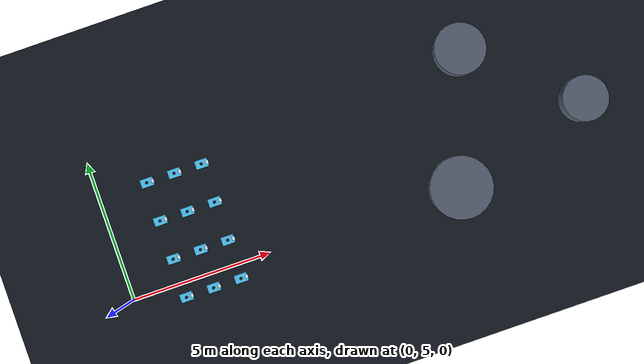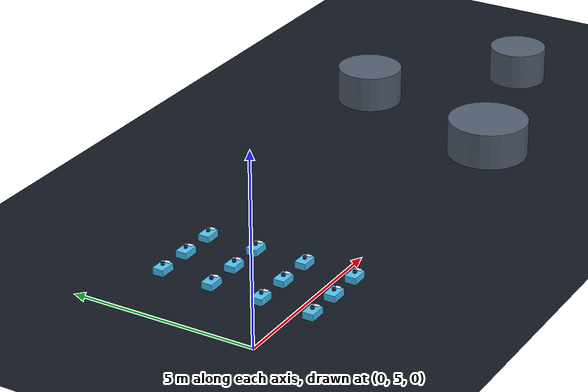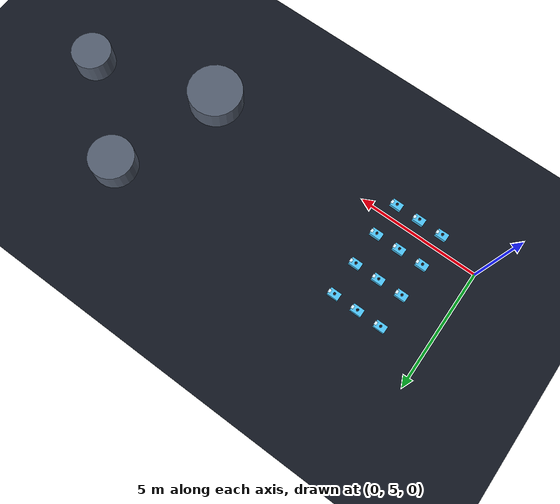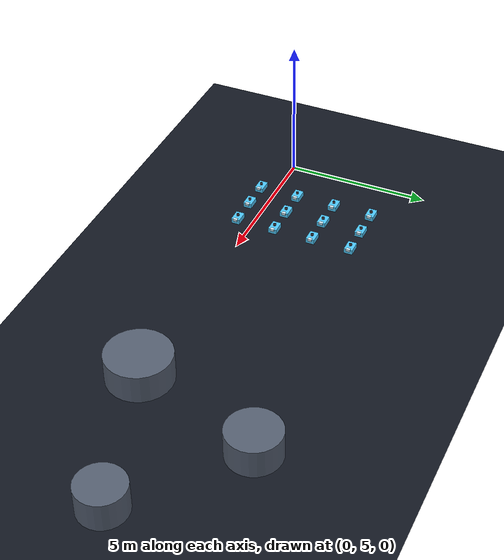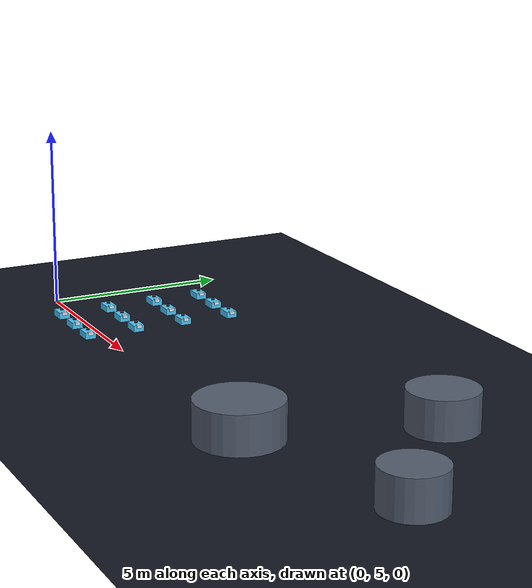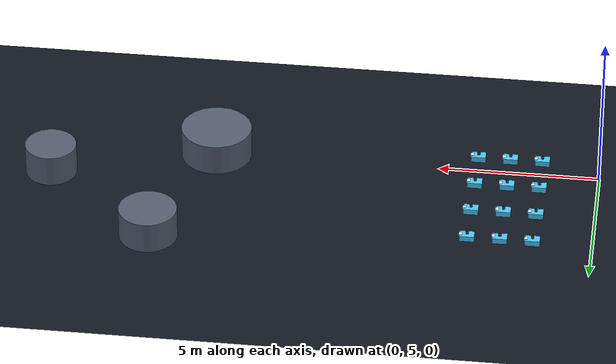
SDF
<?xml version="1.0" ?>
<sdf version="1.8">
  <world name="swarm_demo">
    <physics name="1ms" type="ignored"><max_step_size>0.001</max_step_size><real_time_factor>1.0</real_time_factor></physics>
    <plugin filename="gz-sim-physics-system" name="gz::sim::systems::Physics"/>
    <plugin filename="gz-sim-user-commands-system" name="gz::sim::systems::UserCommands"/>
    <plugin filename="gz-sim-scene-broadcaster-system" name="gz::sim::systems::SceneBroadcaster"/>
    <plugin filename="gz-sim-sensors-system" name="gz::sim::systems::Sensors"><render_engine>ogre2</render_engine><background_color>0.043 0.055 0.078 1</background_color></plugin>
    <scene><ambient>0.5 0.5 0.55 1</ambient><background>0.043 0.055 0.078 1</background><grid>false</grid><shadows>true</shadows></scene>
    <light type="directional" name="sun"><cast_shadows>true</cast_shadows><pose>0 0 10 0 0 0</pose><diffuse>0.9 0.9 0.9 1</diffuse><specular>0.25 0.25 0.25 1</specular><direction>-0.4 0.3 -0.9</direction></light>
    <model name="ground_plane"><static>true</static><link name="link">
      <collision name="c"><geometry><plane><normal>0 0 1</normal><size>60 60</size></plane></geometry></collision>
      <visual name="v"><geometry><plane><normal>0 0 1</normal><size>60 60</size></plane></geometry><material><ambient>0.05 0.07 0.10 1</ambient><diffuse>0.07 0.09 0.13 1</diffuse></material></visual></link></model>

    <model name="o1"><static>true</static><pose>12 5 0.5 0 0 0</pose><link name="link">
      <collision name="c"><geometry><cylinder><radius>1.1</radius><length>1</length></cylinder></geometry></collision>
      <visual name="v"><geometry><cylinder><radius>1.1</radius><length>1</length></cylinder></geometry>
        <material><ambient>0.29 0.33 0.40 1</ambient><diffuse>0.33 0.37 0.44 1</diffuse></material></visual></link></model>
    <model name="o2"><static>true</static><pose>13.5 9.5 0.5 0 0 0</pose><link name="link">
      <collision name="c"><geometry><cylinder><radius>0.9</radius><length>1</length></cylinder></geometry></collision>
      <visual name="v"><geometry><cylinder><radius>0.9</radius><length>1</length></cylinder></geometry>
        <material><ambient>0.29 0.33 0.40 1</ambient><diffuse>0.33 0.37 0.44 1</diffuse></material></visual></link></model>
    <model name="o3"><static>true</static><pose>17 6.5 0.5 0 0 0</pose><link name="link">
      <collision name="c"><geometry><cylinder><radius>0.8</radius><length>1</length></cylinder></geometry></collision>
      <visual name="v"><geometry><cylinder><radius>0.8</radius><length>1</length></cylinder></geometry>
        <material><ambient>0.29 0.33 0.40 1</ambient><diffuse>0.33 0.37 0.44 1</diffuse></material></visual></link></model>

    <model name="a0">
      <pose>1.8 4.5 0.1 0 0 0</pose>
      <link name="base">
        <inertial><mass>1.5</mass><inertia><ixx>0.03</ixx><iyy>0.03</iyy><izz>0.05</izz><ixy>0</ixy><ixz>0</ixz><iyz>0</iyz></inertia></inertial>
        <collision name="c"><pose>0 0 0.1 0 0 0</pose><geometry><box><size>0.45 0.3 0.18</size></box></geometry></collision>
        <visual name="v"><pose>0 0 0.1 0 0 0</pose><geometry><box><size>0.45 0.3 0.18</size></box></geometry>
          <material><ambient>0.18 0.62 0.86 1</ambient><diffuse>0.30 0.78 0.98 1</diffuse><specular>0.3 0.3 0.3 1</specular></material></visual>
        <visual name="nose"><pose>0.2 0 0.16 0 0 0</pose><geometry><box><size>0.1 0.14 0.08</size></box></geometry>
          <material><ambient>0.85 0.95 1 1</ambient><diffuse>0.85 0.95 1 1</diffuse></material></visual>
        <visual name="puck"><pose>0 0 0.24 0 0 0</pose><geometry><cylinder><radius>0.05</radius><length>0.06</length></cylinder></geometry>
          <material><ambient>0.05 0.06 0.08 1</ambient><diffuse>0.08 0.09 0.11 1</diffuse></material></visual>
        <sensor name="lidar" type="gpu_lidar"><pose>0 0 0.28 0 0 0</pose><update_rate>15</update_rate><always_on>1</always_on><topic>/model/a0/scan</topic>
          <lidar><scan><horizontal><samples>72</samples><resolution>1</resolution><min_angle>-3.14159</min_angle><max_angle>3.14159</max_angle></horizontal></scan>
            <range><min>0.12</min><max>6.0</max><resolution>0.01</resolution></range></lidar></sensor>
      </link>
      <plugin filename="gz-sim-velocity-control-system" name="gz::sim::systems::VelocityControl"><topic>/model/a0/cmd_vel</topic></plugin>
      <plugin filename="gz-sim-pose-publisher-system" name="gz::sim::systems::PosePublisher">
        <publish_link_pose>false</publish_link_pose><publish_model_pose>true</publish_model_pose>
        <use_pose_vector_msg>false</use_pose_vector_msg><static_publisher>false</static_publisher><update_frequency>30</update_frequency></plugin>
    </model>
    <model name="a1">
      <pose>1.8 5.9 0.1 0 0 0</pose>
      <link name="base">
        <inertial><mass>1.5</mass><inertia><ixx>0.03</ixx><iyy>0.03</iyy><izz>0.05</izz><ixy>0</ixy><ixz>0</ixz><iyz>0</iyz></inertia></inertial>
        <collision name="c"><pose>0 0 0.1 0 0 0</pose><geometry><box><size>0.45 0.3 0.18</size></box></geometry></collision>
        <visual name="v"><pose>0 0 0.1 0 0 0</pose><geometry><box><size>0.45 0.3 0.18</size></box></geometry>
          <material><ambient>0.18 0.62 0.86 1</ambient><diffuse>0.30 0.78 0.98 1</diffuse><specular>0.3 0.3 0.3 1</specular></material></visual>
        <visual name="nose"><pose>0.2 0 0.16 0 0 0</pose><geometry><box><size>0.1 0.14 0.08</size></box></geometry>
          <material><ambient>0.85 0.95 1 1</ambient><diffuse>0.85 0.95 1 1</diffuse></material></visual>
        <visual name="puck"><pose>0 0 0.24 0 0 0</pose><geometry><cylinder><radius>0.05</radius><length>0.06</length></cylinder></geometry>
          <material><ambient>0.05 0.06 0.08 1</ambient><diffuse>0.08 0.09 0.11 1</diffuse></material></visual>
        <sensor name="lidar" type="gpu_lidar"><pose>0 0 0.28 0 0 0</pose><update_rate>15</update_rate><always_on>1</always_on><topic>/model/a1/scan</topic>
          <lidar><scan><horizontal><samples>72</samples><resolution>1</resolution><min_angle>-3.14159</min_angle><max_angle>3.14159</max_angle></horizontal></scan>
            <range><min>0.12</min><max>6.0</max><resolution>0.01</resolution></range></lidar></sensor>
      </link>
      <plugin filename="gz-sim-velocity-control-system" name="gz::sim::systems::VelocityControl"><topic>/model/a1/cmd_vel</topic></plugin>
      <plugin filename="gz-sim-pose-publisher-system" name="gz::sim::systems::PosePublisher">
        <publish_link_pose>false</publish_link_pose><publish_model_pose>true</publish_model_pose>
        <use_pose_vector_msg>false</use_pose_vector_msg><static_publisher>false</static_publisher><update_frequency>30</update_frequency></plugin>
    </model>
    <model name="a2">
      <pose>1.8 7.3 0.1 0 0 0</pose>
      <link name="base">
        <inertial><mass>1.5</mass><inertia><ixx>0.03</ixx><iyy>0.03</iyy><izz>0.05</izz><ixy>0</ixy><ixz>0</ixz><iyz>0</iyz></inertia></inertial>
        <collision name="c"><pose>0 0 0.1 0 0 0</pose><geometry><box><size>0.45 0.3 0.18</size></box></geometry></collision>
        <visual name="v"><pose>0 0 0.1 0 0 0</pose><geometry><box><size>0.45 0.3 0.18</size></box></geometry>
          <material><ambient>0.18 0.62 0.86 1</ambient><diffuse>0.30 0.78 0.98 1</diffuse><specular>0.3 0.3 0.3 1</specular></material></visual>
        <visual name="nose"><pose>0.2 0 0.16 0 0 0</pose><geometry><box><size>0.1 0.14 0.08</size></box></geometry>
          <material><ambient>0.85 0.95 1 1</ambient><diffuse>0.85 0.95 1 1</diffuse></material></visual>
        <visual name="puck"><pose>0 0 0.24 0 0 0</pose><geometry><cylinder><radius>0.05</radius><length>0.06</length></cylinder></geometry>
          <material><ambient>0.05 0.06 0.08 1</ambient><diffuse>0.08 0.09 0.11 1</diffuse></material></visual>
        <sensor name="lidar" type="gpu_lidar"><pose>0 0 0.28 0 0 0</pose><update_rate>15</update_rate><always_on>1</always_on><topic>/model/a2/scan</topic>
          <lidar><scan><horizontal><samples>72</samples><resolution>1</resolution><min_angle>-3.14159</min_angle><max_angle>3.14159</max_angle></horizontal></scan>
            <range><min>0.12</min><max>6.0</max><resolution>0.01</resolution></range></lidar></sensor>
      </link>
      <plugin filename="gz-sim-velocity-control-system" name="gz::sim::systems::VelocityControl"><topic>/model/a2/cmd_vel</topic></plugin>
      <plugin filename="gz-sim-pose-publisher-system" name="gz::sim::systems::PosePublisher">
        <publish_link_pose>false</publish_link_pose><publish_model_pose>true</publish_model_pose>
        <use_pose_vector_msg>false</use_pose_vector_msg><static_publisher>false</static_publisher><update_frequency>30</update_frequency></plugin>
    </model>
    <model name="a3">
      <pose>1.8 8.7 0.1 0 0 0</pose>
      <link name="base">
        <inertial><mass>1.5</mass><inertia><ixx>0.03</ixx><iyy>0.03</iyy><izz>0.05</izz><ixy>0</ixy><ixz>0</ixz><iyz>0</iyz></inertia></inertial>
        <collision name="c"><pose>0 0 0.1 0 0 0</pose><geometry><box><size>0.45 0.3 0.18</size></box></geometry></collision>
        <visual name="v"><pose>0 0 0.1 0 0 0</pose><geometry><box><size>0.45 0.3 0.18</size></box></geometry>
          <material><ambient>0.18 0.62 0.86 1</ambient><diffuse>0.30 0.78 0.98 1</diffuse><specular>0.3 0.3 0.3 1</specular></material></visual>
        <visual name="nose"><pose>0.2 0 0.16 0 0 0</pose><geometry><box><size>0.1 0.14 0.08</size></box></geometry>
          <material><ambient>0.85 0.95 1 1</ambient><diffuse>0.85 0.95 1 1</diffuse></material></visual>
        <visual name="puck"><pose>0 0 0.24 0 0 0</pose><geometry><cylinder><radius>0.05</radius><length>0.06</length></cylinder></geometry>
          <material><ambient>0.05 0.06 0.08 1</ambient><diffuse>0.08 0.09 0.11 1</diffuse></material></visual>
        <sensor name="lidar" type="gpu_lidar"><pose>0 0 0.28 0 0 0</pose><update_rate>15</update_rate><always_on>1</always_on><topic>/model/a3/scan</topic>
          <lidar><scan><horizontal><samples>72</samples><resolution>1</resolution><min_angle>-3.14159</min_angle><max_angle>3.14159</max_angle></horizontal></scan>
            <range><min>0.12</min><max>6.0</max><resolution>0.01</resolution></range></lidar></sensor>
      </link>
      <plugin filename="gz-sim-velocity-control-system" name="gz::sim::systems::VelocityControl"><topic>/model/a3/cmd_vel</topic></plugin>
      <plugin filename="gz-sim-pose-publisher-system" name="gz::sim::systems::PosePublisher">
        <publish_link_pose>false</publish_link_pose><publish_model_pose>true</publish_model_pose>
        <use_pose_vector_msg>false</use_pose_vector_msg><static_publisher>false</static_publisher><update_frequency>30</update_frequency></plugin>
    </model>
    <model name="a4">
      <pose>2.8 4.5 0.1 0 0 0</pose>
      <link name="base">
        <inertial><mass>1.5</mass><inertia><ixx>0.03</ixx><iyy>0.03</iyy><izz>0.05</izz><ixy>0</ixy><ixz>0</ixz><iyz>0</iyz></inertia></inertial>
        <collision name="c"><pose>0 0 0.1 0 0 0</pose><geometry><box><size>0.45 0.3 0.18</size></box></geometry></collision>
        <visual name="v"><pose>0 0 0.1 0 0 0</pose><geometry><box><size>0.45 0.3 0.18</size></box></geometry>
          <material><ambient>0.18 0.62 0.86 1</ambient><diffuse>0.30 0.78 0.98 1</diffuse><specular>0.3 0.3 0.3 1</specular></material></visual>
        <visual name="nose"><pose>0.2 0 0.16 0 0 0</pose><geometry><box><size>0.1 0.14 0.08</size></box></geometry>
          <material><ambient>0.85 0.95 1 1</ambient><diffuse>0.85 0.95 1 1</diffuse></material></visual>
        <visual name="puck"><pose>0 0 0.24 0 0 0</pose><geometry><cylinder><radius>0.05</radius><length>0.06</length></cylinder></geometry>
          <material><ambient>0.05 0.06 0.08 1</ambient><diffuse>0.08 0.09 0.11 1</diffuse></material></visual>
        <sensor name="lidar" type="gpu_lidar"><pose>0 0 0.28 0 0 0</pose><update_rate>15</update_rate><always_on>1</always_on><topic>/model/a4/scan</topic>
          <lidar><scan><horizontal><samples>72</samples><resolution>1</resolution><min_angle>-3.14159</min_angle><max_angle>3.14159</max_angle></horizontal></scan>
            <range><min>0.12</min><max>6.0</max><resolution>0.01</resolution></range></lidar></sensor>
      </link>
      <plugin filename="gz-sim-velocity-control-system" name="gz::sim::systems::VelocityControl"><topic>/model/a4/cmd_vel</topic></plugin>
      <plugin filename="gz-sim-pose-publisher-system" name="gz::sim::systems::PosePublisher">
        <publish_link_pose>false</publish_link_pose><publish_model_pose>true</publish_model_pose>
        <use_pose_vector_msg>false</use_pose_vector_msg><static_publisher>false</static_publisher><update_frequency>30</update_frequency></plugin>
    </model>
    <model name="a5">
      <pose>2.8 5.9 0.1 0 0 0</pose>
      <link name="base">
        <inertial><mass>1.5</mass><inertia><ixx>0.03</ixx><iyy>0.03</iyy><izz>0.05</izz><ixy>0</ixy><ixz>0</ixz><iyz>0</iyz></inertia></inertial>
        <collision name="c"><pose>0 0 0.1 0 0 0</pose><geometry><box><size>0.45 0.3 0.18</size></box></geometry></collision>
        <visual name="v"><pose>0 0 0.1 0 0 0</pose><geometry><box><size>0.45 0.3 0.18</size></box></geometry>
          <material><ambient>0.18 0.62 0.86 1</ambient><diffuse>0.30 0.78 0.98 1</diffuse><specular>0.3 0.3 0.3 1</specular></material></visual>
        <visual name="nose"><pose>0.2 0 0.16 0 0 0</pose><geometry><box><size>0.1 0.14 0.08</size></box></geometry>
          <material><ambient>0.85 0.95 1 1</ambient><diffuse>0.85 0.95 1 1</diffuse></material></visual>
        <visual name="puck"><pose>0 0 0.24 0 0 0</pose><geometry><cylinder><radius>0.05</radius><length>0.06</length></cylinder></geometry>
          <material><ambient>0.05 0.06 0.08 1</ambient><diffuse>0.08 0.09 0.11 1</diffuse></material></visual>
        <sensor name="lidar" type="gpu_lidar"><pose>0 0 0.28 0 0 0</pose><update_rate>15</update_rate><always_on>1</always_on><topic>/model/a5/scan</topic>
          <lidar><scan><horizontal><samples>72</samples><resolution>1</resolution><min_angle>-3.14159</min_angle><max_angle>3.14159</max_angle></horizontal></scan>
            <range><min>0.12</min><max>6.0</max><resolution>0.01</resolution></range></lidar></sensor>
      </link>
      <plugin filename="gz-sim-velocity-control-system" name="gz::sim::systems::VelocityControl"><topic>/model/a5/cmd_vel</topic></plugin>
      <plugin filename="gz-sim-pose-publisher-system" name="gz::sim::systems::PosePublisher">
        <publish_link_pose>false</publish_link_pose><publish_model_pose>true</publish_model_pose>
        <use_pose_vector_msg>false</use_pose_vector_msg><static_publisher>false</static_publisher><update_frequency>30</update_frequency></plugin>
    </model>
    <model name="a6">
      <pose>2.8 7.3 0.1 0 0 0</pose>
      <link name="base">
        <inertial><mass>1.5</mass><inertia><ixx>0.03</ixx><iyy>0.03</iyy><izz>0.05</izz><ixy>0</ixy><ixz>0</ixz><iyz>0</iyz></inertia></inertial>
        <collision name="c"><pose>0 0 0.1 0 0 0</pose><geometry><box><size>0.45 0.3 0.18</size></box></geometry></collision>
        <visual name="v"><pose>0 0 0.1 0 0 0</pose><geometry><box><size>0.45 0.3 0.18</size></box></geometry>
          <material><ambient>0.18 0.62 0.86 1</ambient><diffuse>0.30 0.78 0.98 1</diffuse><specular>0.3 0.3 0.3 1</specular></material></visual>
        <visual name="nose"><pose>0.2 0 0.16 0 0 0</pose><geometry><box><size>0.1 0.14 0.08</size></box></geometry>
          <material><ambient>0.85 0.95 1 1</ambient><diffuse>0.85 0.95 1 1</diffuse></material></visual>
        <visual name="puck"><pose>0 0 0.24 0 0 0</pose><geometry><cylinder><radius>0.05</radius><length>0.06</length></cylinder></geometry>
          <material><ambient>0.05 0.06 0.08 1</ambient><diffuse>0.08 0.09 0.11 1</diffuse></material></visual>
        <sensor name="lidar" type="gpu_lidar"><pose>0 0 0.28 0 0 0</pose><update_rate>15</update_rate><always_on>1</always_on><topic>/model/a6/scan</topic>
          <lidar><scan><horizontal><samples>72</samples><resolution>1</resolution><min_angle>-3.14159</min_angle><max_angle>3.14159</max_angle></horizontal></scan>
            <range><min>0.12</min><max>6.0</max><resolution>0.01</resolution></range></lidar></sensor>
      </link>
      <plugin filename="gz-sim-velocity-control-system" name="gz::sim::systems::VelocityControl"><topic>/model/a6/cmd_vel</topic></plugin>
      <plugin filename="gz-sim-pose-publisher-system" name="gz::sim::systems::PosePublisher">
        <publish_link_pose>false</publish_link_pose><publish_model_pose>true</publish_model_pose>
        <use_pose_vector_msg>false</use_pose_vector_msg><static_publisher>false</static_publisher><update_frequency>30</update_frequency></plugin>
    </model>
    <model name="a7">
      <pose>2.8 8.7 0.1 0 0 0</pose>
      <link name="base">
        <inertial><mass>1.5</mass><inertia><ixx>0.03</ixx><iyy>0.03</iyy><izz>0.05</izz><ixy>0</ixy><ixz>0</ixz><iyz>0</iyz></inertia></inertial>
        <collision name="c"><pose>0 0 0.1 0 0 0</pose><geometry><box><size>0.45 0.3 0.18</size></box></geometry></collision>
        <visual name="v"><pose>0 0 0.1 0 0 0</pose><geometry><box><size>0.45 0.3 0.18</size></box></geometry>
          <material><ambient>0.18 0.62 0.86 1</ambient><diffuse>0.30 0.78 0.98 1</diffuse><specular>0.3 0.3 0.3 1</specular></material></visual>
        <visual name="nose"><pose>0.2 0 0.16 0 0 0</pose><geometry><box><size>0.1 0.14 0.08</size></box></geometry>
          <material><ambient>0.85 0.95 1 1</ambient><diffuse>0.85 0.95 1 1</diffuse></material></visual>
        <visual name="puck"><pose>0 0 0.24 0 0 0</pose><geometry><cylinder><radius>0.05</radius><length>0.06</length></cylinder></geometry>
          <material><ambient>0.05 0.06 0.08 1</ambient><diffuse>0.08 0.09 0.11 1</diffuse></material></visual>
        <sensor name="lidar" type="gpu_lidar"><pose>0 0 0.28 0 0 0</pose><update_rate>15</update_rate><always_on>1</always_on><topic>/model/a7/scan</topic>
          <lidar><scan><horizontal><samples>72</samples><resolution>1</resolution><min_angle>-3.14159</min_angle><max_angle>3.14159</max_angle></horizontal></scan>
            <range><min>0.12</min><max>6.0</max><resolution>0.01</resolution></range></lidar></sensor>
      </link>
      <plugin filename="gz-sim-velocity-control-system" name="gz::sim::systems::VelocityControl"><topic>/model/a7/cmd_vel</topic></plugin>
      <plugin filename="gz-sim-pose-publisher-system" name="gz::sim::systems::PosePublisher">
        <publish_link_pose>false</publish_link_pose><publish_model_pose>true</publish_model_pose>
        <use_pose_vector_msg>false</use_pose_vector_msg><static_publisher>false</static_publisher><update_frequency>30</update_frequency></plugin>
    </model>
    <model name="a8">
      <pose>3.8 4.5 0.1 0 0 0</pose>
      <link name="base">
        <inertial><mass>1.5</mass><inertia><ixx>0.03</ixx><iyy>0.03</iyy><izz>0.05</izz><ixy>0</ixy><ixz>0</ixz><iyz>0</iyz></inertia></inertial>
        <collision name="c"><pose>0 0 0.1 0 0 0</pose><geometry><box><size>0.45 0.3 0.18</size></box></geometry></collision>
        <visual name="v"><pose>0 0 0.1 0 0 0</pose><geometry><box><size>0.45 0.3 0.18</size></box></geometry>
          <material><ambient>0.18 0.62 0.86 1</ambient><diffuse>0.30 0.78 0.98 1</diffuse><specular>0.3 0.3 0.3 1</specular></material></visual>
        <visual name="nose"><pose>0.2 0 0.16 0 0 0</pose><geometry><box><size>0.1 0.14 0.08</size></box></geometry>
          <material><ambient>0.85 0.95 1 1</ambient><diffuse>0.85 0.95 1 1</diffuse></material></visual>
        <visual name="puck"><pose>0 0 0.24 0 0 0</pose><geometry><cylinder><radius>0.05</radius><length>0.06</length></cylinder></geometry>
          <material><ambient>0.05 0.06 0.08 1</ambient><diffuse>0.08 0.09 0.11 1</diffuse></material></visual>
        <sensor name="lidar" type="gpu_lidar"><pose>0 0 0.28 0 0 0</pose><update_rate>15</update_rate><always_on>1</always_on><topic>/model/a8/scan</topic>
          <lidar><scan><horizontal><samples>72</samples><resolution>1</resolution><min_angle>-3.14159</min_angle><max_angle>3.14159</max_angle></horizontal></scan>
            <range><min>0.12</min><max>6.0</max><resolution>0.01</resolution></range></lidar></sensor>
      </link>
      <plugin filename="gz-sim-velocity-control-system" name="gz::sim::systems::VelocityControl"><topic>/model/a8/cmd_vel</topic></plugin>
      <plugin filename="gz-sim-pose-publisher-system" name="gz::sim::systems::PosePublisher">
        <publish_link_pose>false</publish_link_pose><publish_model_pose>true</publish_model_pose>
        <use_pose_vector_msg>false</use_pose_vector_msg><static_publisher>false</static_publisher><update_frequency>30</update_frequency></plugin>
    </model>
    <model name="a9">
      <pose>3.8 5.9 0.1 0 0 0</pose>
      <link name="base">
        <inertial><mass>1.5</mass><inertia><ixx>0.03</ixx><iyy>0.03</iyy><izz>0.05</izz><ixy>0</ixy><ixz>0</ixz><iyz>0</iyz></inertia></inertial>
        <collision name="c"><pose>0 0 0.1 0 0 0</pose><geometry><box><size>0.45 0.3 0.18</size></box></geometry></collision>
        <visual name="v"><pose>0 0 0.1 0 0 0</pose><geometry><box><size>0.45 0.3 0.18</size></box></geometry>
          <material><ambient>0.18 0.62 0.86 1</ambient><diffuse>0.30 0.78 0.98 1</diffuse><specular>0.3 0.3 0.3 1</specular></material></visual>
        <visual name="nose"><pose>0.2 0 0.16 0 0 0</pose><geometry><box><size>0.1 0.14 0.08</size></box></geometry>
          <material><ambient>0.85 0.95 1 1</ambient><diffuse>0.85 0.95 1 1</diffuse></material></visual>
        <visual name="puck"><pose>0 0 0.24 0 0 0</pose><geometry><cylinder><radius>0.05</radius><length>0.06</length></cylinder></geometry>
          <material><ambient>0.05 0.06 0.08 1</ambient><diffuse>0.08 0.09 0.11 1</diffuse></material></visual>
        <sensor name="lidar" type="gpu_lidar"><pose>0 0 0.28 0 0 0</pose><update_rate>15</update_rate><always_on>1</always_on><topic>/model/a9/scan</topic>
          <lidar><scan><horizontal><samples>72</samples><resolution>1</resolution><min_angle>-3.14159</min_angle><max_angle>3.14159</max_angle></horizontal></scan>
            <range><min>0.12</min><max>6.0</max><resolution>0.01</resolution></range></lidar></sensor>
      </link>
      <plugin filename="gz-sim-velocity-control-system" name="gz::sim::systems::VelocityControl"><topic>/model/a9/cmd_vel</topic></plugin>
      <plugin filename="gz-sim-pose-publisher-system" name="gz::sim::systems::PosePublisher">
        <publish_link_pose>false</publish_link_pose><publish_model_pose>true</publish_model_pose>
        <use_pose_vector_msg>false</use_pose_vector_msg><static_publisher>false</static_publisher><update_frequency>30</update_frequency></plugin>
    </model>
    <model name="a10">
      <pose>3.8 7.3 0.1 0 0 0</pose>
      <link name="base">
        <inertial><mass>1.5</mass><inertia><ixx>0.03</ixx><iyy>0.03</iyy><izz>0.05</izz><ixy>0</ixy><ixz>0</ixz><iyz>0</iyz></inertia></inertial>
        <collision name="c"><pose>0 0 0.1 0 0 0</pose><geometry><box><size>0.45 0.3 0.18</size></box></geometry></collision>
        <visual name="v"><pose>0 0 0.1 0 0 0</pose><geometry><box><size>0.45 0.3 0.18</size></box></geometry>
          <material><ambient>0.18 0.62 0.86 1</ambient><diffuse>0.30 0.78 0.98 1</diffuse><specular>0.3 0.3 0.3 1</specular></material></visual>
        <visual name="nose"><pose>0.2 0 0.16 0 0 0</pose><geometry><box><size>0.1 0.14 0.08</size></box></geometry>
          <material><ambient>0.85 0.95 1 1</ambient><diffuse>0.85 0.95 1 1</diffuse></material></visual>
        <visual name="puck"><pose>0 0 0.24 0 0 0</pose><geometry><cylinder><radius>0.05</radius><length>0.06</length></cylinder></geometry>
          <material><ambient>0.05 0.06 0.08 1</ambient><diffuse>0.08 0.09 0.11 1</diffuse></material></visual>
        <sensor name="lidar" type="gpu_lidar"><pose>0 0 0.28 0 0 0</pose><update_rate>15</update_rate><always_on>1</always_on><topic>/model/a10/scan</topic>
          <lidar><scan><horizontal><samples>72</samples><resolution>1</resolution><min_angle>-3.14159</min_angle><max_angle>3.14159</max_angle></horizontal></scan>
            <range><min>0.12</min><max>6.0</max><resolution>0.01</resolution></range></lidar></sensor>
      </link>
      <plugin filename="gz-sim-velocity-control-system" name="gz::sim::systems::VelocityControl"><topic>/model/a10/cmd_vel</topic></plugin>
      <plugin filename="gz-sim-pose-publisher-system" name="gz::sim::systems::PosePublisher">
        <publish_link_pose>false</publish_link_pose><publish_model_pose>true</publish_model_pose>
        <use_pose_vector_msg>false</use_pose_vector_msg><static_publisher>false</static_publisher><update_frequency>30</update_frequency></plugin>
    </model>
    <model name="a11">
      <pose>3.8 8.7 0.1 0 0 0</pose>
      <link name="base">
        <inertial><mass>1.5</mass><inertia><ixx>0.03</ixx><iyy>0.03</iyy><izz>0.05</izz><ixy>0</ixy><ixz>0</ixz><iyz>0</iyz></inertia></inertial>
        <collision name="c"><pose>0 0 0.1 0 0 0</pose><geometry><box><size>0.45 0.3 0.18</size></box></geometry></collision>
        <visual name="v"><pose>0 0 0.1 0 0 0</pose><geometry><box><size>0.45 0.3 0.18</size></box></geometry>
          <material><ambient>0.18 0.62 0.86 1</ambient><diffuse>0.30 0.78 0.98 1</diffuse><specular>0.3 0.3 0.3 1</specular></material></visual>
        <visual name="nose"><pose>0.2 0 0.16 0 0 0</pose><geometry><box><size>0.1 0.14 0.08</size></box></geometry>
          <material><ambient>0.85 0.95 1 1</ambient><diffuse>0.85 0.95 1 1</diffuse></material></visual>
        <visual name="puck"><pose>0 0 0.24 0 0 0</pose><geometry><cylinder><radius>0.05</radius><length>0.06</length></cylinder></geometry>
          <material><ambient>0.05 0.06 0.08 1</ambient><diffuse>0.08 0.09 0.11 1</diffuse></material></visual>
        <sensor name="lidar" type="gpu_lidar"><pose>0 0 0.28 0 0 0</pose><update_rate>15</update_rate><always_on>1</always_on><topic>/model/a11/scan</topic>
          <lidar><scan><horizontal><samples>72</samples><resolution>1</resolution><min_angle>-3.14159</min_angle><max_angle>3.14159</max_angle></horizontal></scan>
            <range><min>0.12</min><max>6.0</max><resolution>0.01</resolution></range></lidar></sensor>
      </link>
      <plugin filename="gz-sim-velocity-control-system" name="gz::sim::systems::VelocityControl"><topic>/model/a11/cmd_vel</topic></plugin>
      <plugin filename="gz-sim-pose-publisher-system" name="gz::sim::systems::PosePublisher">
        <publish_link_pose>false</publish_link_pose><publish_model_pose>true</publish_model_pose>
        <use_pose_vector_msg>false</use_pose_vector_msg><static_publisher>false</static_publisher><update_frequency>30</update_frequency></plugin>
    </model>

    <model name="rec_camera"><static>true</static><pose>11 -3.5 13.5 0 0.82 1.5707</pose>
      <link name="link"><sensor name="rec" type="camera">
        <camera><horizontal_fov>1.05</horizontal_fov><image><width>1000</width><height>620</height></image><clip><near>0.1</near><far>140</far></clip></camera>
        <always_on>1</always_on><update_rate>30</update_rate><topic>rec_camera</topic></sensor></link></model>
  </world>
</sdf>
